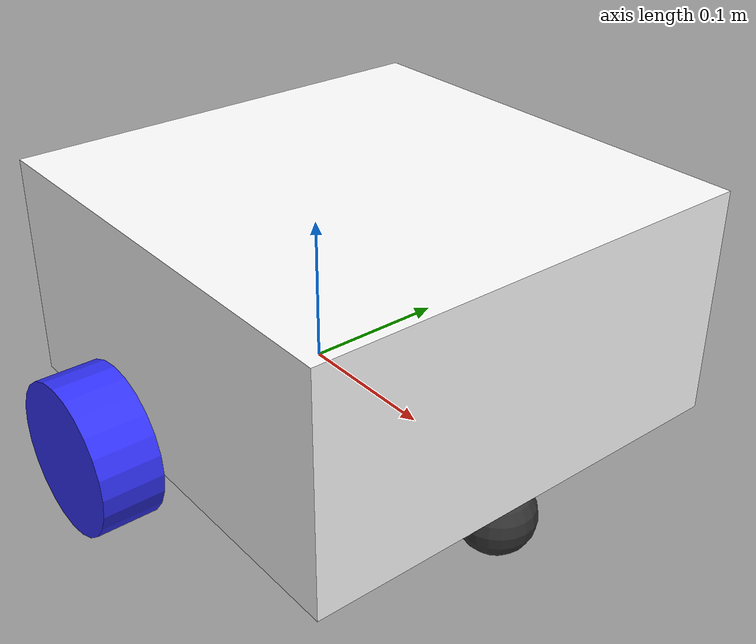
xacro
<?xml version="1.0"?>
<robot xmlns:xacro="http://www.ros.org/wiki/xacro" name="reggiebot">

  <xacro:include filename="reggiebot_core.xacro" />
  <xacro:include filename="reggiebot_physical_ros2_control.xacro" />

</robot>

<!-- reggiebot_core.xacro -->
<robot xmlns:xacro="http://www.ros.org/wiki/xacro">

  <xacro:include filename="inertial_macros.xacro" />

  <!-- COLORS -->

  <material name="white">
    <color rgba="1 1 1 1" />
  </material>
  <material name="blue">
    <color rgba="0.2 0.2 1 1" />
  </material>
  <material name="orange">
    <color rgba="1 0.5 0.5 1" />
  </material>
  <material name="black">
    <color rgba="0 0 0 1" />
  </material>
  <material name="grey">
    <color rgba="0.2 0.2 0.2 1" />
  </material>

  <!-- MEASUREMENT INFO -->

  <!-- length = x, width = y, height = z -->
  <xacro:property name="chassis_length" value="0.3" />
  <xacro:property name="chassis_width" value="0.3" />
  <xacro:property name="chassis_height" value="0.15" />

  <xacro:property name="wheel_radius" value="0.05" />
  <xacro:property name="wheel_length" value="0.04" />
  <xacro:property name="caster_radius" value="0.025" />

  <!-- BASE LINK -->

  <link name="base_link" />

  <!-- BASE FOOTPRINT JOINT/LINK -->

  <!-- centered below base_link(center of drive wheels) NOT chassis body -->
  <!-- TODO: make linear z stuck to ground (0), and angular y/x tied to ground (usually 0)) -->
  <!-- -wheel radius so it has the same z as the ground -->
  <joint name="base_footprint_joint" type="fixed">
    <parent link="base_link" />
    <child link="base_footprint" />
    <origin xyz="0 0 ${-wheel_radius}" rpy="0 0 0" />
  </joint>
  <link name="base_footprint" />

  <!-- CHASSIS JOINT/LINK -->

  <!-- The chassis is at the center of the two drive wheels,
       the chassis is half way up (z), 1/6th forward (x)
       this means the drive wheels will be 1/3rd into the chassis (x) -->
  <joint name="chassis_joint" type="fixed">
    <parent link="base_link" />
    <child link="chassis" />
    <origin xyz="${chassis_length/6} 0 ${chassis_height/2}" rpy="0 0 0" />
  </joint>

  <link name="chassis">
    <visual>
      <origin xyz="0 0 0" />
      <geometry>
        <box size="${chassis_length} ${chassis_width} ${chassis_height}" />
      </geometry>
      <material name="white" />
    </visual>
    <collision>
      <origin xyz="0 0 0" />
      <geometry>
        <box size="${chassis_length} ${chassis_width} ${chassis_height}" />
      </geometry>
    </collision>
    <xacro:inertial_box mass="0.5" x="${chassis_length}" y="${chassis_width}"
      z="${chassis_height}">
      <!-- same from collision -->
      <origin xyz="0 0 0" rpy="0 0 0" />
    </xacro:inertial_box>
  </link>
  <gazebo reference="chassis">
    <material>Gazebo/White</material>
  </gazebo>

  <!-- LEFT AND RIGHT WHEEL JOINTS/LINKS -->

  <!-- drive wheel macro -->
  <xacro:macro name="wheel" params="prefix y_reflect">
    <!-- joint is at the center of the wheel -->
    <joint name="${prefix}_wheel_joint" type="continuous">
      <parent link="base_link" />
      <child link="${prefix}_wheel" />
      <origin xyz="0 ${y_reflect*(chassis_width/2 + wheel_length/2)} 0" rpy=" 0 0 0" />
      <axis xyz="0 1 0" />
    </joint>

    <link name="${prefix}_wheel">
      <visual>
        <origin xyz="0 0 0" rpy="${pi/2} 0 0" />
        <geometry>
          <cylinder radius="${wheel_radius}" length="${wheel_length}" />
        </geometry>
        <material name="blue" />
      </visual>
      <collision>
        <origin xyz="0 0 0" rpy="${pi/2} 0 0" />
        <geometry>
          <cylinder radius="${wheel_radius}" length="${wheel_length}" />
        </geometry>
      </collision>
      <xacro:inertial_cylinder mass="0.1" radius="${wheel_radius}" length="${wheel_length}">
        <origin xyz="0 0 0" rpy="${pi/2} 0 0" />
      </xacro:inertial_cylinder>
    </link>

    <gazebo reference="${prefix}_wheel">
      <material>Gazebo/Blue</material>
    </gazebo>
  </xacro:macro>

  <xacro:wheel prefix="left" y_reflect="1" />
  <xacro:wheel prefix="right" y_reflect="-1" />

  <!-- CASTER WHEEL JOINT/LINK -->

  <joint name="caster_wheel_joint" type="fixed">
    <parent link="chassis" />
    <child link="caster_wheel" />
    <origin xyz="${chassis_length/2-caster_radius} 0 ${-chassis_height/2}" rpy=" 0 0 0" />
  </joint>

  <link name="caster_wheel">
    <visual>
      <origin xyz="0 0 ${-wheel_radius+caster_radius}" />
      <geometry>
        <sphere radius="${caster_radius}" />
      </geometry>
      <material name="grey" />
    </visual>
    <collision>
      <origin xyz="0 0 ${-wheel_radius+caster_radius}" />
      <geometry>
        <sphere radius="${caster_radius}" />
      </geometry>
    </collision>
    <xacro:inertial_sphere mass="0.1" radius="${caster_radius}">
      <origin xyz="0 0 ${-wheel_radius+caster_radius}" rpy="0 0 0" />
    </xacro:inertial_sphere>
  </link>
  <gazebo reference="caster_wheel">
    <material>Gazebo/Grey</material>
    <!-- make caster wheel "frictionless" (TODO: for now) -->
    <mu1 value="0.001" />
    <mu2 value="0.001" />
  </gazebo>
</robot>

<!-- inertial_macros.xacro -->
<robot xmlns:xacro="http://www.ros.org/wiki/xacro">

  <!-- Specify some standard inertial calculations
    https://en.wikipedia.org/wiki/List_of_moments_of_inertia -->
  <!-- These make use of xacro's mathematical functionality -->

  <xacro:macro name="inertial_sphere" params="mass radius *origin">
    <inertial>
      <xacro:insert_block name="origin" />
      <mass value="${mass}" />
      <inertia ixx="${(2/5) * mass * (radius*radius)}" ixy="0.0" ixz="0.0"
        iyy="${(2/5) * mass * (radius*radius)}" iyz="0.0"
        izz="${(2/5) * mass * (radius*radius)}" />
    </inertial>
  </xacro:macro>

  <xacro:macro name="inertial_box" params="mass x y z *origin">
    <inertial>
      <xacro:insert_block name="origin" />
      <mass value="${mass}" />
      <inertia ixx="${(1/12) * mass * (y*y+z*z)}" ixy="0.0" ixz="0.0"
        iyy="${(1/12) * mass * (x*x+z*z)}" iyz="0.0"
        izz="${(1/12) * mass * (x*x+y*y)}" />
    </inertial>
  </xacro:macro>

  <xacro:macro name="inertial_cylinder" params="mass length radius *origin">
    <inertial>
      <xacro:insert_block name="origin" />
      <mass value="${mass}" />
      <inertia ixx="${(1/12) * mass * (3*radius*radius + length*length)}" ixy="0.0" ixz="0.0"
        iyy="${(1/12) * mass * (3*radius*radius + length*length)}" iyz="0.0"
        izz="${(1/2) * mass * (radius*radius)}" />
    </inertial>
  </xacro:macro>

</robot>
